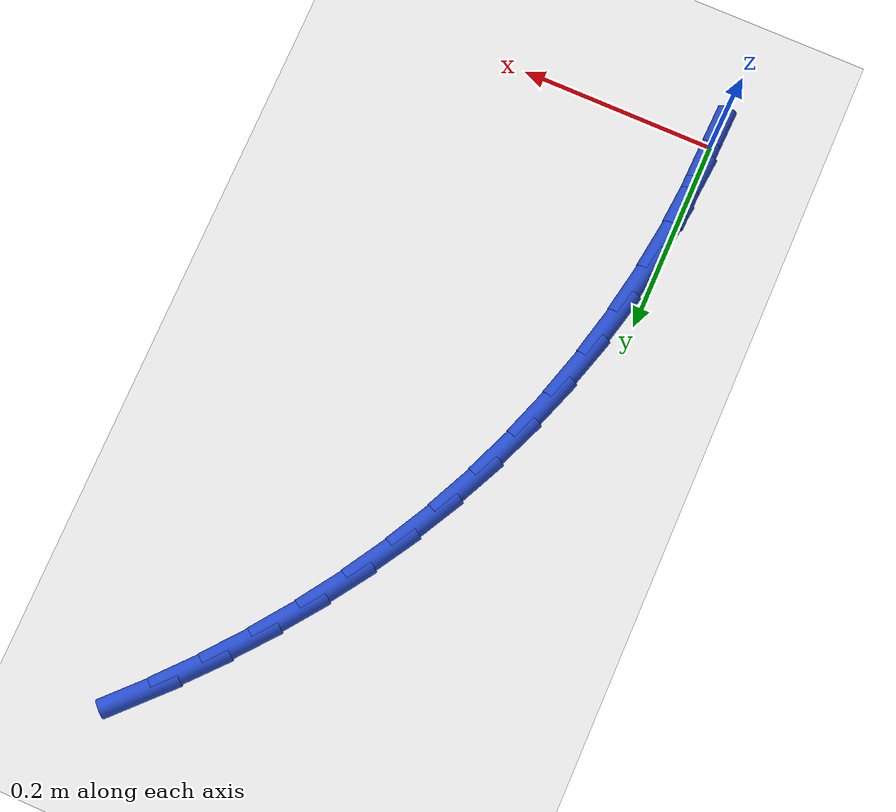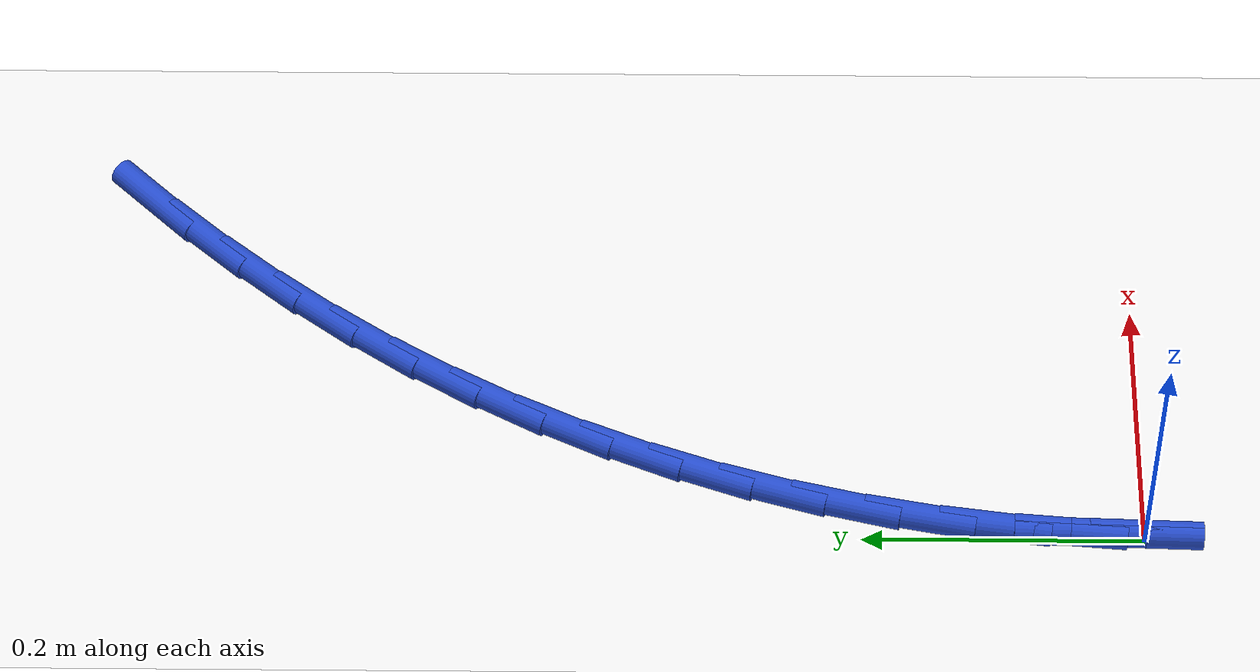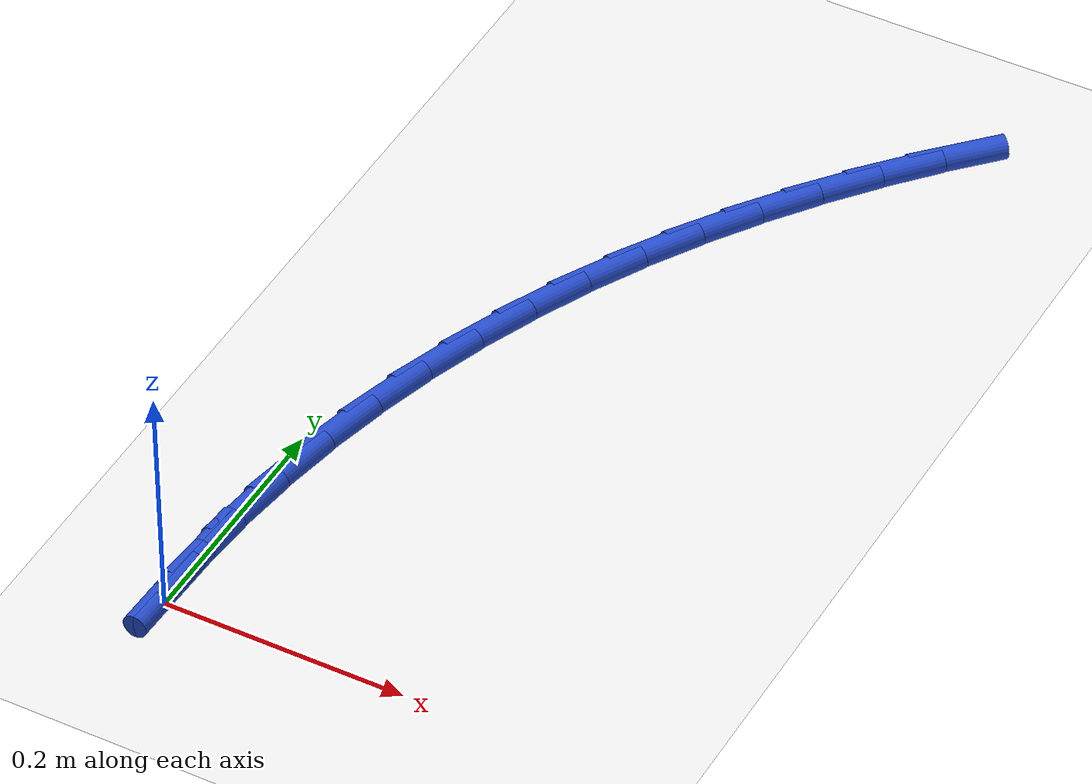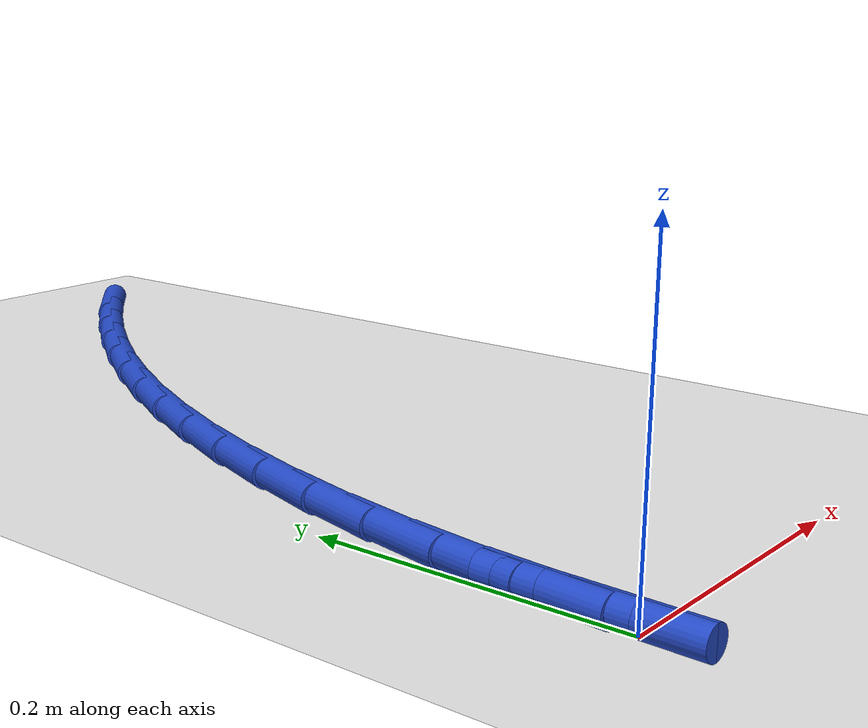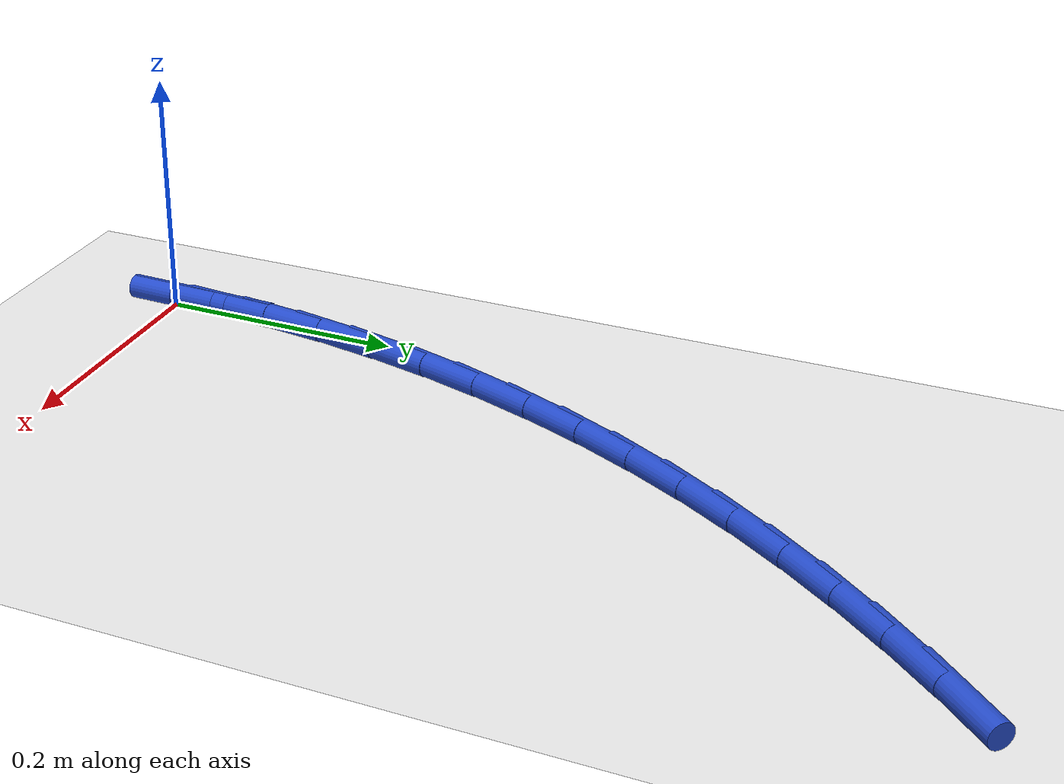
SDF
<sdf version="1.6">
 <world name="default">
  <model name="ground_plane">
   <static>1</static>
   <link name="link">
    <collision name="collision">
     <geometry><plane><normal>0 0 1</normal><size>100 100</size></plane></geometry>
     <surface><friction><ode><mu>100</mu><mu2>50</mu2></ode></friction></surface>
    </collision>
    <visual name="visual">
     <cast_shadows>0</cast_shadows>
     <geometry><plane><normal>0 0 1</normal><size>100 100</size></plane></geometry>
     <material>
      <script><uri>file://media/materials/scripts/gazebo.material</uri><name>Gazebo/WhiteGlow</name></script>
     </material>
    </visual>
   </link>
  </model>
  <model name="line">
   <link name="link_0">
    <pose>1.3877787807814457e-17 1.249000902703301e-16 0.01 0 1.57 1.5397155368790938</pose>
    <collision name="collision">
     <geometry><cylinder><radius>0.01</radius><length>0.08</length></cylinder></geometry>
    </collision>
    <visual name="visual">
     <material>
      <script><name>Gazebo/Blue</name><uri>file://media/materials/scripts/gazebo.material</uri></script>
     </material>
     <geometry><cylinder><radius>0.01</radius><length>0.08</length></cylinder></geometry>
    </visual>
   </link>
   <link name="link_1">
    <pose>0.0016496396402193626 0.053058767746443615 0.01 0 1.57 1.486767750287063</pose>
    <collision name="collision">
     <geometry><cylinder><radius>0.01</radius><length>0.08</length></cylinder></geometry>
    </collision>
    <visual name="visual">
     <material>
      <script><name>Gazebo/Blue</name><uri>file://media/materials/scripts/gazebo.material</uri></script>
     </material>
     <geometry><cylinder><radius>0.01</radius><length>0.08</length></cylinder></geometry>
    </visual>
   </link>
   <link name="link_2">
    <pose>0.0061066257631755255 0.10597518501267404 0.01 0 1.57 1.4346172440166665</pose>
    <collision name="collision">
     <geometry><cylinder><radius>0.01</radius><length>0.08</length></cylinder></geometry>
    </collision>
    <visual name="visual">
     <material>
      <script><name>Gazebo/Blue</name><uri>file://media/materials/scripts/gazebo.material</uri></script>
     </material>
     <geometry><cylinder><radius>0.01</radius><length>0.08</length></cylinder></geometry>
    </visual>
   </link>
   <link name="link_3">
    <pose>0.013315982126956843 0.15858778750707223 0.01 0 1.57 1.383057350820544</pose>
    <collision name="collision">
     <geometry><cylinder><radius>0.01</radius><length>0.08</length></cylinder></geometry>
    </collision>
    <visual name="visual">
     <material>
      <script><name>Gazebo/Blue</name><uri>file://media/materials/scripts/gazebo.material</uri></script>
     </material>
     <geometry><cylinder><radius>0.01</radius><length>0.08</length></cylinder></geometry>
    </visual>
   </link>
   <link name="link_4">
    <pose>0.023222732489651655 0.21073511093801858 0.01 0 1.57 1.3318730193041797</pose>
    <collision name="collision">
     <geometry><cylinder><radius>0.01</radius><length>0.08</length></cylinder></geometry>
    </collision>
    <visual name="visual">
     <material>
      <script><name>Gazebo/Blue</name><uri>file://media/materials/scripts/gazebo.material</uri></script>
     </material>
     <geometry><cylinder><radius>0.01</radius><length>0.08</length></cylinder></geometry>
    </visual>
   </link>
   <link name="link_5">
    <pose>0.035771900609348345 0.26225569101389395 0.01 0 1.57 1.2808430059323457</pose>
    <collision name="collision">
     <geometry><cylinder><radius>0.01</radius><length>0.08</length></cylinder></geometry>
    </collision>
    <visual name="visual">
     <material>
      <script><name>Gazebo/Blue</name><uri>file://media/materials/scripts/gazebo.material</uri></script>
     </material>
     <geometry><cylinder><radius>0.01</radius><length>0.08</length></cylinder></geometry>
    </visual>
   </link>
   <link name="link_6">
    <pose>0.05090851024413523 0.312988063443079 0.01 0 1.57 1.22974162803838</pose>
    <collision name="collision">
     <geometry><cylinder><radius>0.01</radius><length>0.08</length></cylinder></geometry>
    </collision>
    <visual name="visual">
     <material>
      <script><name>Gazebo/Blue</name><uri>file://media/materials/scripts/gazebo.material</uri></script>
     </material>
     <geometry><cylinder><radius>0.01</radius><length>0.08</length></cylinder></geometry>
    </visual>
   </link>
   <link name="link_7">
    <pose>0.06857758515210063 0.3627707639339541 0.01 0 1.57 1.1783402987478335</pose>
    <collision name="collision">
     <geometry><cylinder><radius>0.01</radius><length>0.08</length></cylinder></geometry>
    </collision>
    <visual name="visual">
     <material>
      <script><name>Gazebo/Blue</name><uri>file://media/materials/scripts/gazebo.material</uri></script>
     </material>
     <geometry><cylinder><radius>0.01</radius><length>0.08</length></cylinder></geometry>
    </visual>
   </link>
   <link name="link_8">
    <pose>0.08872414909133301 0.41144232819490034 0.01 0 1.57 1.1264639910470764</pose>
    <collision name="collision">
     <geometry><cylinder><radius>0.01</radius><length>0.08</length></cylinder></geometry>
    </collision>
    <visual name="visual">
     <material>
      <script><name>Gazebo/Blue</name><uri>file://media/materials/scripts/gazebo.material</uri></script>
     </material>
     <geometry><cylinder><radius>0.01</radius><length>0.08</length></cylinder></geometry>
    </visual>
   </link>
   <link name="link_9">
    <pose>0.1112921193246824 0.45884567432193646 0.01 0 1.57 1.0750662802315014</pose>
    <collision name="collision">
     <geometry><cylinder><radius>0.01</radius><length>0.08</length></cylinder></geometry>
    </collision>
    <visual name="visual">
     <material>
      <script><name>Gazebo/Blue</name><uri>file://media/materials/scripts/gazebo.material</uri></script>
     </material>
     <geometry><cylinder><radius>0.01</radius><length>0.08</length></cylinder></geometry>
    </visual>
   </link>
   <link name="link_10">
    <pose>0.13620322907181076 0.5049115825846231 0.01 0 1.57 1.02527825872554</pose>
    <collision name="collision">
     <geometry><cylinder><radius>0.01</radius><length>0.08</length></cylinder></geometry>
    </collision>
    <visual name="visual">
     <material>
      <script><name>Gazebo/Blue</name><uri>file://media/materials/scripts/gazebo.material</uri></script>
     </material>
     <geometry><cylinder><radius>0.01</radius><length>0.08</length></cylinder></geometry>
    </visual>
   </link>
   <link name="link_11">
    <pose>0.16335870290310434 0.5496520598569965 0.01 0 1.57 0.9772844430796144</pose>
    <collision name="collision">
     <geometry><cylinder><radius>0.01</radius><length>0.08</length></cylinder></geometry>
    </collision>
    <visual name="visual">
     <material>
      <script><name>Gazebo/Blue</name><uri>file://media/materials/scripts/gazebo.material</uri></script>
     </material>
     <geometry><cylinder><radius>0.01</radius><length>0.08</length></cylinder></geometry>
    </visual>
   </link>
   <link name="link_12">
    <pose>0.19265899462035108 0.5930821657210138 0.01 0 1.57 0.931187896122774</pose>
    <collision name="collision">
     <geometry><cylinder><radius>0.01</radius><length>0.08</length></cylinder></geometry>
    </collision>
    <visual name="visual">
     <material>
      <script><name>Gazebo/Blue</name><uri>file://media/materials/scripts/gazebo.material</uri></script>
     </material>
     <geometry><cylinder><radius>0.01</radius><length>0.08</length></cylinder></geometry>
    </visual>
   </link>
   <link name="link_13">
    <pose>0.22400455802533917 0.6352169597586321 0.01 0 1.57 0.8870516670950145</pose>
    <collision name="collision">
     <geometry><cylinder><radius>0.01</radius><length>0.08</length></cylinder></geometry>
    </collision>
    <visual name="visual">
     <material>
      <script><name>Gazebo/Blue</name><uri>file://media/materials/scripts/gazebo.material</uri></script>
     </material>
     <geometry><cylinder><radius>0.01</radius><length>0.08</length></cylinder></geometry>
    </visual>
   </link>
   <link name="link_14">
    <pose>0.2572958469198563 0.6760715015518078 0.01 0 1.57 0.8449032430488221</pose>
    <collision name="collision">
     <geometry><cylinder><radius>0.01</radius><length>0.08</length></cylinder></geometry>
    </collision>
    <visual name="visual">
     <material>
      <script><name>Gazebo/Blue</name><uri>file://media/materials/scripts/gazebo.material</uri></script>
     </material>
     <geometry><cylinder><radius>0.01</radius><length>0.08</length></cylinder></geometry>
    </visual>
   </link>
   <link name="link_15">
    <pose>0.2924333151056908 0.7156608506824981 0.01 0 1.57 0.8047396836634639</pose>
    <collision name="collision">
     <geometry><cylinder><radius>0.01</radius><length>0.08</length></cylinder></geometry>
    </collision>
    <visual name="visual">
     <material>
      <script><name>Gazebo/Blue</name><uri>file://media/materials/scripts/gazebo.material</uri></script>
     </material>
     <geometry><cylinder><radius>0.01</radius><length>0.08</length></cylinder></geometry>
    </visual>
   </link>
   <link name="link_140">
    <pose>0.0 3.0531133177191805e-16 0.01 0 1.57 1.5394913171306237</pose>
    <collision name="collision">
     <geometry><cylinder><radius>0.01</radius><length>0.08</length></cylinder></geometry>
    </collision>
    <visual name="visual">
     <material>
      <script><name>Gazebo/Blue</name><uri>file://media/materials/scripts/gazebo.material</uri></script>
     </material>
     <geometry><cylinder><radius>0.01</radius><length>0.08</length></cylinder></geometry>
    </visual>
   </link>
   <link name="link_141">
    <pose>0.0016616187151823267 0.053061024419816145 0.01 0 1.57 1.5394913171306241</pose>
    <collision name="collision">
     <geometry><cylinder><radius>0.01</radius><length>0.08</length></cylinder></geometry>
    </collision>
    <visual name="visual">
     <material>
      <script><name>Gazebo/Blue</name><uri>file://media/materials/scripts/gazebo.material</uri></script>
     </material>
     <geometry><cylinder><radius>0.01</radius><length>0.08</length></cylinder></geometry>
    </visual>
   </link>
  </model>
 </world>
</sdf>
